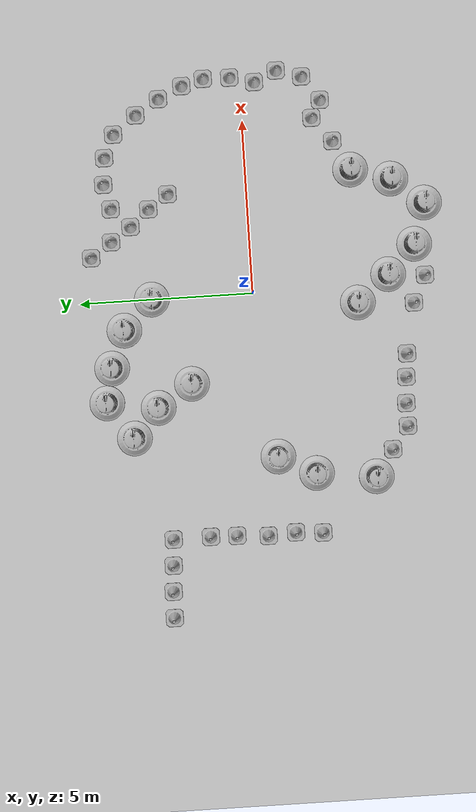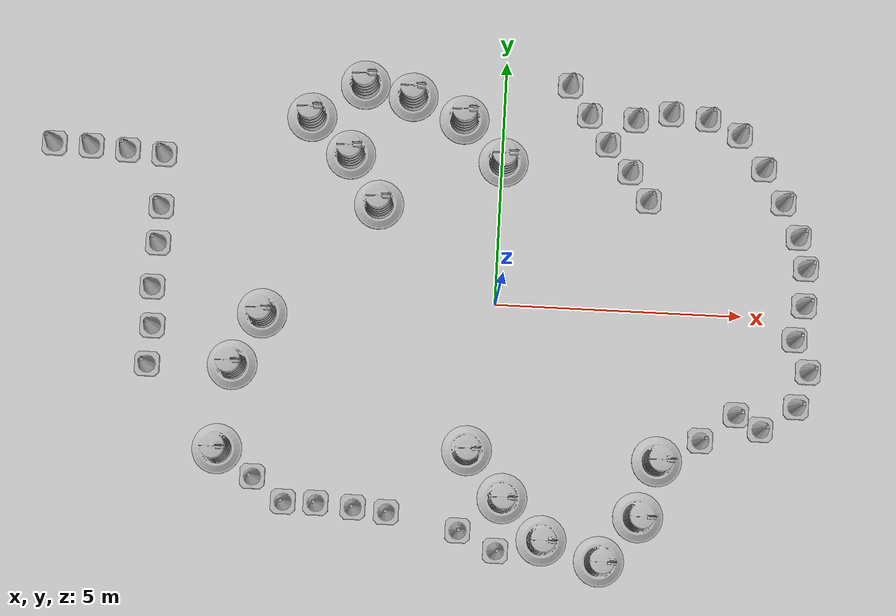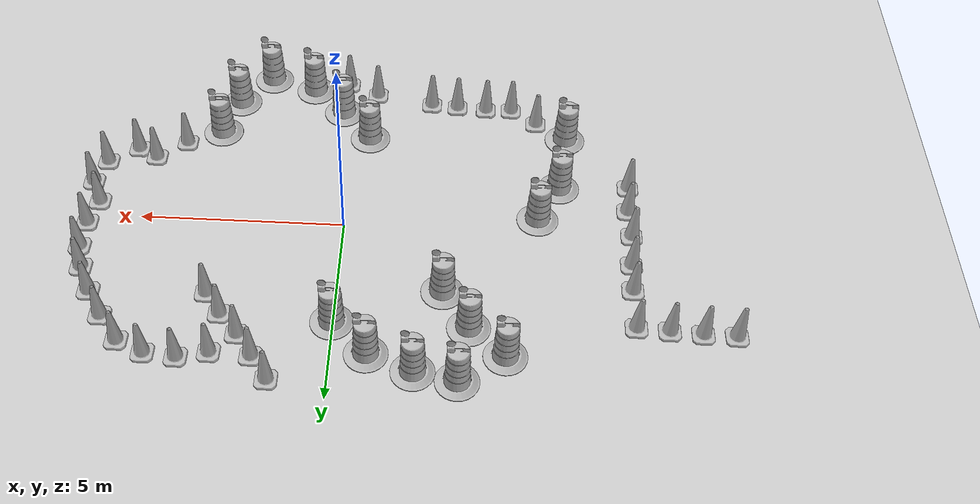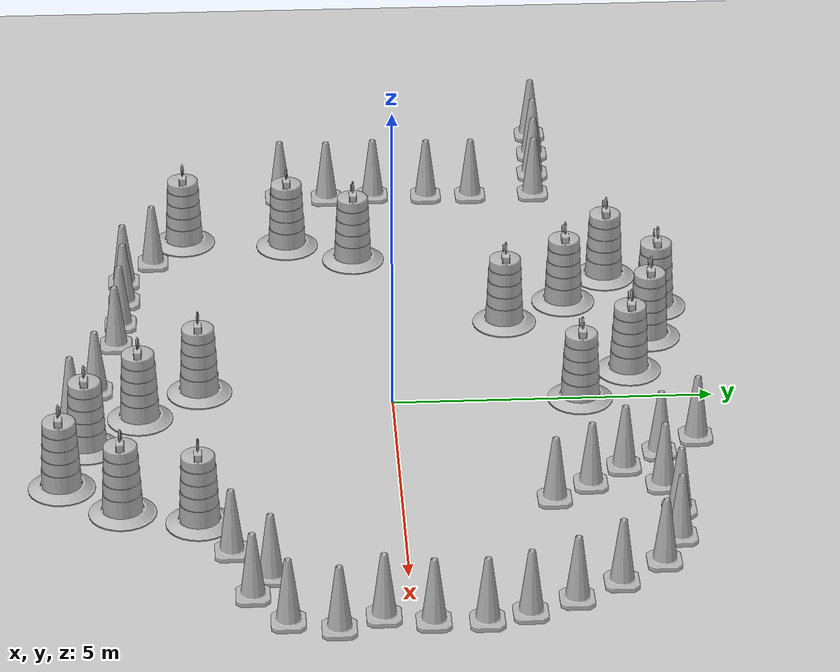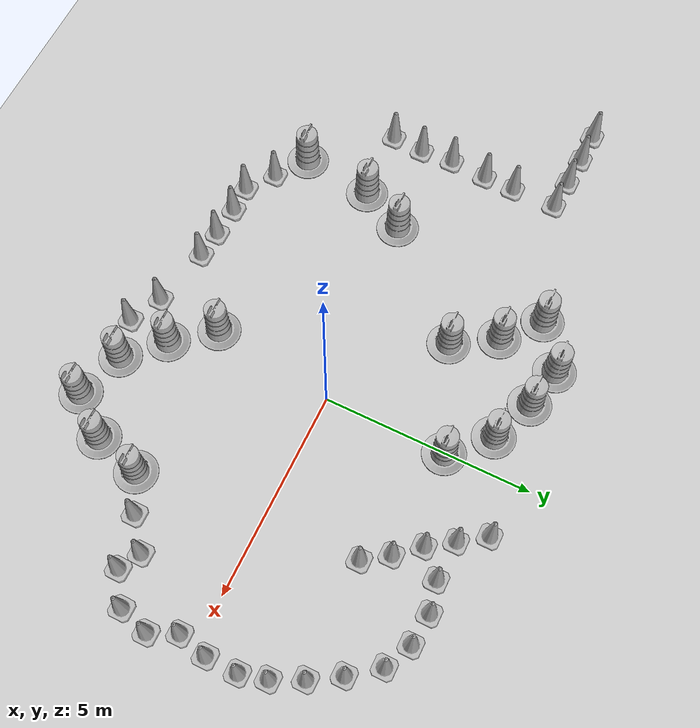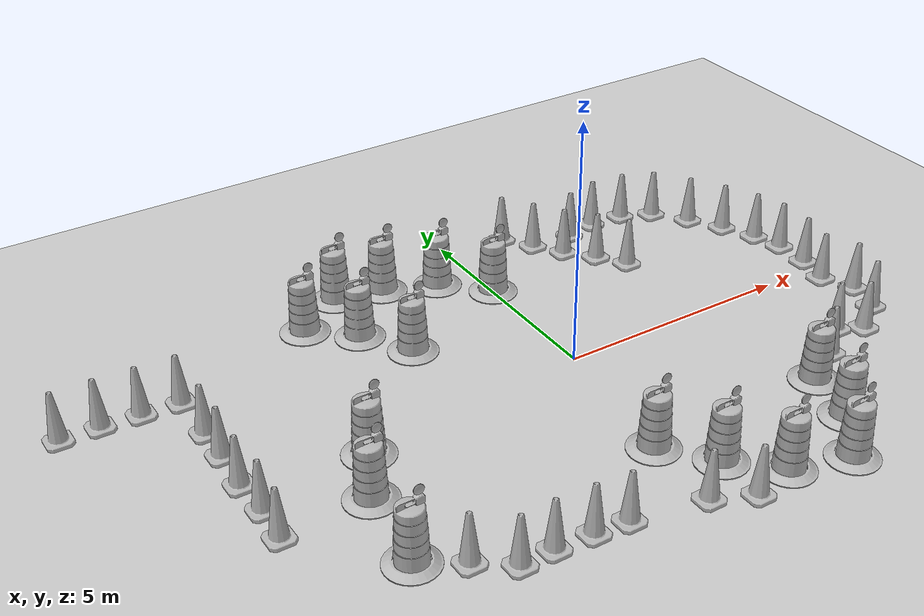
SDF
<sdf version="1.7">
 <world name="default">
  <light name="sun" type="directional">
   <pose>0 0 10 0 -0 0</pose>
   <diffuse>0.8 0.8 0.8 1</diffuse>
   <specular>0.2 0.2 0.2 1</specular>
   <attenuation>
    <range>1000</range>
    <constant>0.9</constant>
    <linear>0.01</linear>
    <quadratic>0.001</quadratic>
   </attenuation>
   <direction>-0.5 0.1 -0.9</direction>
   <spot><inner_angle>0</inner_angle><outer_angle>0</outer_angle><falloff>0</falloff></spot>
  </light>
  <model name="ground_plane">
   <static>1</static>
   <link name="link">
    <collision name="collision">
     <geometry><plane><normal>0 0 1</normal><size>100 100</size></plane></geometry>
     <surface><friction><ode><mu>100</mu><mu2>50</mu2></ode></friction></surface>
    </collision>
    <visual name="visual">
     <cast_shadows>0</cast_shadows>
     <geometry><plane><normal>0 0 1</normal><size>100 100</size></plane></geometry>
     <material>
      <script><uri>file://media/materials/scripts/gazebo.material</uri><name>Gazebo/Grey</name></script>
     </material>
    </visual>
   </link>
  </model>
  <gravity>0 0 -9.8</gravity>
  <magnetic_field>6e-06 2.3e-05 -4.2e-05</magnetic_field>
  <atmosphere type="adiabatic"/>
  <physics type="ode">
   <max_step_size>0.001</max_step_size>
   <real_time_factor>1</real_time_factor>
   <real_time_update_rate>1000</real_time_update_rate>
  </physics>
  <scene><ambient>0.4 0.4 0.4 1</ambient><background>0.7 0.7 0.7 1</background><shadows>1</shadows></scene>
  <audio><device>default</device></audio>
  <spherical_coordinates>
   <surface_model>EARTH_WGS84</surface_model>
   <latitude_deg>0</latitude_deg>
   <longitude_deg>0</longitude_deg>
   <elevation>0</elevation>
   <heading_deg>0</heading_deg>
  </spherical_coordinates>
  <model name="Construction Barrel">
   <link name="link">
    <inertial>
     <pose>0 0 0.4 0 -0 0</pose>
     <mass>500</mass>
     <inertia><ixx>51.2096</ixx><iyy>51.2096</iyy><izz>25</izz><ixy>0</ixy><ixz>0</ixz><iyz>0</iyz></inertia>
    </inertial>
    <collision name="collision">
     <geometry><mesh><uri>model://construction_barrel/meshes/construction_barrel.dae</uri></mesh></geometry>
    </collision>
    <visual name="visual">
     <geometry><mesh><uri>model://construction_barrel/meshes/construction_barrel.dae</uri></mesh></geometry>
    </visual>
   </link>
   <pose>-5.48412 -3.22158 -1e-06 4e-06 -1e-06 -6.3e-05</pose>
  </model>
  <model name="Construction Barrel_clone">
   <link name="link">
    <inertial>
     <pose>0 0 0.4 0 -0 0</pose>
     <mass>500</mass>
     <inertia><ixx>51.2096</ixx><iyy>51.2096</iyy><izz>25</izz><ixy>0</ixy><ixz>0</ixz><iyz>0</iyz></inertia>
    </inertial>
    <collision name="collision">
     <geometry><mesh><uri>model://construction_barrel/meshes/construction_barrel.dae</uri></mesh></geometry>
    </collision>
    <visual name="visual">
     <geometry><mesh><uri>model://construction_barrel/meshes/construction_barrel.dae</uri></mesh></geometry>
    </visual>
   </link>
   <pose>-5.27953 -1.50655 -2e-06 6e-06 -4e-06 -6.7e-05</pose>
  </model>
  <model name="Construction Barrel_clone_0">
   <link name="link">
    <inertial>
     <pose>0 0 0.4 0 -0 0</pose>
     <mass>500</mass>
     <inertia><ixx>51.2096</ixx><iyy>51.2096</iyy><izz>25</izz><ixy>0</ixy><ixz>0</ixz><iyz>0</iyz></inertia>
    </inertial>
    <collision name="collision">
     <geometry><mesh><uri>model://construction_barrel/meshes/construction_barrel.dae</uri></mesh></geometry>
    </collision>
    <visual name="visual">
     <geometry><mesh><uri>model://construction_barrel/meshes/construction_barrel.dae</uri></mesh></geometry>
    </visual>
   </link>
   <pose>-4.73432 -0.427312 -1e-06 4e-06 -1e-06 -6.3e-05</pose>
  </model>
  <model name="Construction Barrel_clone_1">
   <link name="link">
    <inertial>
     <pose>0 0 0.4 0 -0 0</pose>
     <mass>500</mass>
     <inertia><ixx>51.2096</ixx><iyy>51.2096</iyy><izz>25</izz><ixy>0</ixy><ixz>0</ixz><iyz>0</iyz></inertia>
    </inertial>
    <collision name="collision">
     <geometry><mesh><uri>model://construction_barrel/meshes/construction_barrel.dae</uri></mesh></geometry>
    </collision>
    <visual name="visual">
     <geometry><mesh><uri>model://construction_barrel/meshes/construction_barrel.dae</uri></mesh></geometry>
    </visual>
   </link>
   <pose>-2.47926 1.92801 -1e-06 4e-06 -1e-06 -6.2e-05</pose>
  </model>
  <model name="Construction Barrel_clone_2">
   <link name="link">
    <inertial>
     <pose>0 0 0.4 0 -0 0</pose>
     <mass>500</mass>
     <inertia><ixx>51.2096</ixx><iyy>51.2096</iyy><izz>25</izz><ixy>0</ixy><ixz>0</ixz><iyz>0</iyz></inertia>
    </inertial>
    <collision name="collision">
     <geometry><mesh><uri>model://construction_barrel/meshes/construction_barrel.dae</uri></mesh></geometry>
    </collision>
    <visual name="visual">
     <geometry><mesh><uri>model://construction_barrel/meshes/construction_barrel.dae</uri></mesh></geometry>
    </visual>
   </link>
   <pose>-3.11243 2.93275 -1e-06 4e-06 -1e-06 -6.1e-05</pose>
  </model>
  <model name="Construction Barrel_clone_3">
   <link name="link">
    <inertial>
     <pose>0 0 0.4 0 -0 0</pose>
     <mass>500</mass>
     <inertia><ixx>51.2096</ixx><iyy>51.2096</iyy><izz>25</izz><ixy>0</ixy><ixz>0</ixz><iyz>0</iyz></inertia>
    </inertial>
    <collision name="collision">
     <geometry><mesh><uri>model://construction_barrel/meshes/construction_barrel.dae</uri></mesh></geometry>
    </collision>
    <visual name="visual">
     <geometry><mesh><uri>model://construction_barrel/meshes/construction_barrel.dae</uri></mesh></geometry>
    </visual>
   </link>
   <pose>-3.95111 3.67349 0 1e-06 1e-06 -6.1e-05</pose>
  </model>
  <model name="Construction Barrel_clone_4">
   <link name="link">
    <inertial>
     <pose>0 0 0.4 0 -0 0</pose>
     <mass>500</mass>
     <inertia><ixx>51.2096</ixx><iyy>51.2096</iyy><izz>25</izz><ixy>0</ixy><ixz>0</ixz><iyz>0</iyz></inertia>
    </inertial>
    <collision name="collision">
     <geometry><mesh><uri>model://construction_barrel/meshes/construction_barrel.dae</uri></mesh></geometry>
    </collision>
    <visual name="visual">
     <geometry><mesh><uri>model://construction_barrel/meshes/construction_barrel.dae</uri></mesh></geometry>
    </visual>
   </link>
   <pose>-2.88832 4.40209 -3e-06 -7e-06 -1.1e-05 0.011005</pose>
  </model>
  <model name="Construction Barrel_clone_5">
   <link name="link">
    <inertial>
     <pose>0 0 0.4 0 -0 0</pose>
     <mass>500</mass>
     <inertia><ixx>51.2096</ixx><iyy>51.2096</iyy><izz>25</izz><ixy>0</ixy><ixz>0</ixz><iyz>0</iyz></inertia>
    </inertial>
    <collision name="collision">
     <geometry><mesh><uri>model://construction_barrel/meshes/construction_barrel.dae</uri></mesh></geometry>
    </collision>
    <visual name="visual">
     <geometry><mesh><uri>model://construction_barrel/meshes/construction_barrel.dae</uri></mesh></geometry>
    </visual>
   </link>
   <pose>-1.89361 4.19939 -2e-06 1e-06 8e-06 -0.028723</pose>
  </model>
  <model name="Construction Barrel_clone_6">
   <link name="link">
    <inertial>
     <pose>0 0 0.4 0 -0 0</pose>
     <mass>500</mass>
     <inertia><ixx>51.2096</ixx><iyy>51.2096</iyy><izz>25</izz><ixy>0</ixy><ixz>0</ixz><iyz>0</iyz></inertia>
    </inertial>
    <collision name="collision">
     <geometry><mesh><uri>model://construction_barrel/meshes/construction_barrel.dae</uri></mesh></geometry>
    </collision>
    <visual name="visual">
     <geometry><mesh><uri>model://construction_barrel/meshes/construction_barrel.dae</uri></mesh></geometry>
    </visual>
   </link>
   <pose>-0.822973 3.77781 0 1e-06 1e-06 -5.8e-05</pose>
  </model>
  <model name="Construction Barrel_clone_7">
   <link name="link">
    <inertial>
     <pose>0 0 0.4 0 -0 0</pose>
     <mass>500</mass>
     <inertia><ixx>51.2096</ixx><iyy>51.2096</iyy><izz>25</izz><ixy>0</ixy><ixz>0</ixz><iyz>0</iyz></inertia>
    </inertial>
    <collision name="collision">
     <geometry><mesh><uri>model://construction_barrel/meshes/construction_barrel.dae</uri></mesh></geometry>
    </collision>
    <visual name="visual">
     <geometry><mesh><uri>model://construction_barrel/meshes/construction_barrel.dae</uri></mesh></geometry>
    </visual>
   </link>
   <pose>0.022057 2.93383 -1e-06 4e-06 -1e-06 -5.5e-05</pose>
  </model>
  <model name="Construction Barrel_clone_8">
   <link name="link">
    <inertial>
     <pose>0 0 0.4 0 -0 0</pose>
     <mass>500</mass>
     <inertia><ixx>51.2096</ixx><iyy>51.2096</iyy><izz>25</izz><ixy>0</ixy><ixz>0</ixz><iyz>0</iyz></inertia>
    </inertial>
    <collision name="collision">
     <geometry><mesh><uri>model://construction_barrel/meshes/construction_barrel.dae</uri></mesh></geometry>
    </collision>
    <visual name="visual">
     <geometry><mesh><uri>model://construction_barrel/meshes/construction_barrel.dae</uri></mesh></geometry>
    </visual>
   </link>
   <pose>3.40298 -3.02205 -1e-06 4e-06 -1e-06 -5.4e-05</pose>
  </model>
  <model name="Construction Barrel_clone_9">
   <link name="link">
    <inertial>
     <pose>0 0 0.4 0 -0 0</pose>
     <mass>500</mass>
     <inertia><ixx>51.2096</ixx><iyy>51.2096</iyy><izz>25</izz><ixy>0</ixy><ixz>0</ixz><iyz>0</iyz></inertia>
    </inertial>
    <collision name="collision">
     <geometry><mesh><uri>model://construction_barrel/meshes/construction_barrel.dae</uri></mesh></geometry>
    </collision>
    <visual name="visual">
     <geometry><mesh><uri>model://construction_barrel/meshes/construction_barrel.dae</uri></mesh></geometry>
    </visual>
   </link>
   <pose>3.06785 -4.16456 -1e-06 4e-06 -1e-06 -5.3e-05</pose>
  </model>
  <model name="Construction Barrel_clone_10">
   <link name="link">
    <inertial>
     <pose>0 0 0.4 0 -0 0</pose>
     <mass>500</mass>
     <inertia><ixx>51.2096</ixx><iyy>51.2096</iyy><izz>25</izz><ixy>0</ixy><ixz>0</ixz><iyz>0</iyz></inertia>
    </inertial>
    <collision name="collision">
     <geometry><mesh><uri>model://construction_barrel/meshes/construction_barrel.dae</uri></mesh></geometry>
    </collision>
    <visual name="visual">
     <geometry><mesh><uri>model://construction_barrel/meshes/construction_barrel.dae</uri></mesh></geometry>
    </visual>
   </link>
   <pose>-0.441019 -3.00007 0 1e-06 1e-06 -5.3e-05</pose>
  </model>
  <model name="Construction Barrel_clone_11">
   <link name="link">
    <inertial>
     <pose>0 0 0.4 0 -0 0</pose>
     <mass>500</mass>
     <inertia><ixx>51.2096</ixx><iyy>51.2096</iyy><izz>25</izz><ixy>0</ixy><ixz>0</ixz><iyz>0</iyz></inertia>
    </inertial>
    <collision name="collision">
     <geometry><mesh><uri>model://construction_barrel/meshes/construction_barrel.dae</uri></mesh></geometry>
    </collision>
    <visual name="visual">
     <geometry><mesh><uri>model://construction_barrel/meshes/construction_barrel.dae</uri></mesh></geometry>
    </visual>
   </link>
   <pose>0.319661 -3.9246 -1e-06 4e-06 -1e-06 -5.1e-05</pose>
  </model>
  <model name="Construction Barrel_clone_12">
   <link name="link">
    <inertial>
     <pose>0 0 0.4 0 -0 0</pose>
     <mass>500</mass>
     <inertia><ixx>51.2096</ixx><iyy>51.2096</iyy><izz>25</izz><ixy>0</ixy><ixz>0</ixz><iyz>0</iyz></inertia>
    </inertial>
    <collision name="collision">
     <geometry><mesh><uri>model://construction_barrel/meshes/construction_barrel.dae</uri></mesh></geometry>
    </collision>
    <visual name="visual">
     <geometry><mesh><uri>model://construction_barrel/meshes/construction_barrel.dae</uri></mesh></geometry>
    </visual>
   </link>
   <pose>1.14602 -4.72974 0 1e-06 1e-06 -5.1e-05</pose>
  </model>
  <model name="Construction Barrel_clone_13">
   <link name="link">
    <inertial>
     <pose>0 0 0.4 0 -0 0</pose>
     <mass>500</mass>
     <inertia><ixx>51.2096</ixx><iyy>51.2096</iyy><izz>25</izz><ixy>0</ixy><ixz>0</ixz><iyz>0</iyz></inertia>
    </inertial>
    <collision name="collision">
     <geometry><mesh><uri>model://construction_barrel/meshes/construction_barrel.dae</uri></mesh></geometry>
    </collision>
    <visual name="visual">
     <geometry><mesh><uri>model://construction_barrel/meshes/construction_barrel.dae</uri></mesh></geometry>
    </visual>
   </link>
   <pose>2.31932 -5.08798 -1e-06 4e-06 -1e-06 -4.8e-05</pose>
  </model>
  <model name="Construction Cone">
   <link name="link">
    <collision name="collision">
     <geometry>
      <mesh><scale>10 10 10</scale><uri>model://construction_cone/meshes/construction_cone.dae</uri></mesh>
     </geometry>
    </collision>
    <visual name="visual">
     <geometry>
      <mesh><scale>10 10 10</scale><uri>model://construction_cone/meshes/construction_cone.dae</uri></mesh>
     </geometry>
    </visual>
    <inertial>
     <inertia><ixx>1</ixx><ixy>0</ixy><ixz>0</ixz><iyy>1</iyy><iyz>0</iyz><izz>1</izz></inertia>
     <mass>1</mass>
    </inertial>
   </link>
   <pose>1.32289 4.59929 -0 0 -1e-06 0</pose>
  </model>
  <model name="Construction Cone_clone">
   <link name="link">
    <collision name="collision">
     <geometry>
      <mesh><scale>10 10 10</scale><uri>model://construction_cone/meshes/construction_cone.dae</uri></mesh>
     </geometry>
    </collision>
    <visual name="visual">
     <geometry>
      <mesh><scale>10 10 10</scale><uri>model://construction_cone/meshes/construction_cone.dae</uri></mesh>
     </geometry>
    </visual>
    <inertial>
     <inertia><ixx>1</ixx><ixy>0</ixy><ixz>0</ixz><iyy>1</iyy><iyz>0</iyz><izz>1</izz></inertia>
     <mass>1</mass>
    </inertial>
   </link>
   <pose>1.74638 3.99434 -0 0 -0 0</pose>
  </model>
  <model name="Construction Cone_clone_0">
   <link name="link">
    <collision name="collision">
     <geometry>
      <mesh><scale>10 10 10</scale><uri>model://construction_cone/meshes/construction_cone.dae</uri></mesh>
     </geometry>
    </collision>
    <visual name="visual">
     <geometry>
      <mesh><scale>10 10 10</scale><uri>model://construction_cone/meshes/construction_cone.dae</uri></mesh>
     </geometry>
    </visual>
    <inertial>
     <inertia><ixx>1</ixx><ixy>0</ixy><ixz>0</ixz><iyy>1</iyy><iyz>0</iyz><izz>1</izz></inertia>
     <mass>1</mass>
    </inertial>
   </link>
   <pose>2.15028 3.4113 -0 0 -1e-06 0</pose>
  </model>
  <model name="Construction Cone_clone_1">
   <link name="link">
    <collision name="collision">
     <geometry>
      <mesh><scale>10 10 10</scale><uri>model://construction_cone/meshes/construction_cone.dae</uri></mesh>
     </geometry>
    </collision>
    <visual name="visual">
     <geometry>
      <mesh><scale>10 10 10</scale><uri>model://construction_cone/meshes/construction_cone.dae</uri></mesh>
     </geometry>
    </visual>
    <inertial>
     <inertia><ixx>1</ixx><ixy>0</ixy><ixz>0</ixz><iyy>1</iyy><iyz>0</iyz><izz>1</izz></inertia>
     <mass>1</mass>
    </inertial>
   </link>
   <pose>2.62665 2.86362 -0 0 -1e-06 0</pose>
  </model>
  <model name="Construction Cone_clone_2">
   <link name="link">
    <collision name="collision">
     <geometry>
      <mesh><scale>10 10 10</scale><uri>model://construction_cone/meshes/construction_cone.dae</uri></mesh>
     </geometry>
    </collision>
    <visual name="visual">
     <geometry>
      <mesh><scale>10 10 10</scale><uri>model://construction_cone/meshes/construction_cone.dae</uri></mesh>
     </geometry>
    </visual>
    <inertial>
     <inertia><ixx>1</ixx><ixy>0</ixy><ixz>0</ixz><iyy>1</iyy><iyz>0</iyz><izz>1</izz></inertia>
     <mass>1</mass>
    </inertial>
   </link>
   <pose>3.02666 2.2856 -0 0 -0 0</pose>
  </model>
  <model name="Construction Cone_clone_3">
   <link name="link">
    <collision name="collision">
     <geometry>
      <mesh><scale>10 10 10</scale><uri>model://construction_cone/meshes/construction_cone.dae</uri></mesh>
     </geometry>
    </collision>
    <visual name="visual">
     <geometry>
      <mesh><scale>10 10 10</scale><uri>model://construction_cone/meshes/construction_cone.dae</uri></mesh>
     </geometry>
    </visual>
    <inertial>
     <inertia><ixx>1</ixx><ixy>0</ixy><ixz>0</ixz><iyy>1</iyy><iyz>0</iyz><izz>1</izz></inertia>
     <mass>1</mass>
    </inertial>
   </link>
   <pose>2.69917 3.94926 -0 0 -0 0</pose>
  </model>
  <model name="Construction Cone_clone_4">
   <link name="link">
    <collision name="collision">
     <geometry>
      <mesh><scale>10 10 10</scale><uri>model://construction_cone/meshes/construction_cone.dae</uri></mesh>
     </geometry>
    </collision>
    <visual name="visual">
     <geometry>
      <mesh><scale>10 10 10</scale><uri>model://construction_cone/meshes/construction_cone.dae</uri></mesh>
     </geometry>
    </visual>
    <inertial>
     <inertia><ixx>1</ixx><ixy>0</ixy><ixz>0</ixz><iyy>1</iyy><iyz>0</iyz><izz>1</izz></inertia>
     <mass>1</mass>
    </inertial>
   </link>
   <pose>3.41835 4.11511 -0 0 -1e-06 0</pose>
  </model>
  <model name="Construction Cone_clone_5">
   <link name="link">
    <collision name="collision">
     <geometry>
      <mesh><scale>10 10 10</scale><uri>model://construction_cone/meshes/construction_cone.dae</uri></mesh>
     </geometry>
    </collision>
    <visual name="visual">
     <geometry>
      <mesh><scale>10 10 10</scale><uri>model://construction_cone/meshes/construction_cone.dae</uri></mesh>
     </geometry>
    </visual>
    <inertial>
     <inertia><ixx>1</ixx><ixy>0</ixy><ixz>0</ixz><iyy>1</iyy><iyz>0</iyz><izz>1</izz></inertia>
     <mass>1</mass>
    </inertial>
   </link>
   <pose>4.18175 4.04255 -0 0 -1e-06 0</pose>
  </model>
  <model name="Construction Cone_clone_6">
   <link name="link">
    <collision name="collision">
     <geometry>
      <mesh><scale>10 10 10</scale><uri>model://construction_cone/meshes/construction_cone.dae</uri></mesh>
     </geometry>
    </collision>
    <visual name="visual">
     <geometry>
      <mesh><scale>10 10 10</scale><uri>model://construction_cone/meshes/construction_cone.dae</uri></mesh>
     </geometry>
    </visual>
    <inertial>
     <inertia><ixx>1</ixx><ixy>0</ixy><ixz>0</ixz><iyy>1</iyy><iyz>0</iyz><izz>1</izz></inertia>
     <mass>1</mass>
    </inertial>
   </link>
   <pose>4.84295 3.73927 -0 0 -1e-06 0</pose>
  </model>
  <model name="Construction Cone_clone_7">
   <link name="link">
    <collision name="collision">
     <geometry>
      <mesh><scale>10 10 10</scale><uri>model://construction_cone/meshes/construction_cone.dae</uri></mesh>
     </geometry>
    </collision>
    <visual name="visual">
     <geometry>
      <mesh><scale>10 10 10</scale><uri>model://construction_cone/meshes/construction_cone.dae</uri></mesh>
     </geometry>
    </visual>
    <inertial>
     <inertia><ixx>1</ixx><ixy>0</ixy><ixz>0</ixz><iyy>1</iyy><iyz>0</iyz><izz>1</izz></inertia>
     <mass>1</mass>
    </inertial>
   </link>
   <pose>5.35961 3.06509 -0 0 -0 0</pose>
  </model>
  <model name="Construction Cone_clone_8">
   <link name="link">
    <collision name="collision">
     <geometry>
      <mesh><scale>10 10 10</scale><uri>model://construction_cone/meshes/construction_cone.dae</uri></mesh>
     </geometry>
    </collision>
    <visual name="visual">
     <geometry>
      <mesh><scale>10 10 10</scale><uri>model://construction_cone/meshes/construction_cone.dae</uri></mesh>
     </geometry>
    </visual>
    <inertial>
     <inertia><ixx>1</ixx><ixy>0</ixy><ixz>0</ixz><iyy>1</iyy><iyz>0</iyz><izz>1</izz></inertia>
     <mass>1</mass>
    </inertial>
   </link>
   <pose>5.78327 2.38067 -0 0 -1e-06 0</pose>
  </model>
  <model name="Construction Cone_clone_9">
   <link name="link">
    <collision name="collision">
     <geometry>
      <mesh><scale>10 10 10</scale><uri>model://construction_cone/meshes/construction_cone.dae</uri></mesh>
     </geometry>
    </collision>
    <visual name="visual">
     <geometry>
      <mesh><scale>10 10 10</scale><uri>model://construction_cone/meshes/construction_cone.dae</uri></mesh>
     </geometry>
    </visual>
    <inertial>
     <inertia><ixx>1</ixx><ixy>0</ixy><ixz>0</ixz><iyy>1</iyy><iyz>0</iyz><izz>1</izz></inertia>
     <mass>1</mass>
    </inertial>
   </link>
   <pose>6.11428 1.68565 0 -0 -0 -0</pose>
  </model>
  <model name="Construction Cone_clone_10">
   <link name="link">
    <collision name="collision">
     <geometry>
      <mesh><scale>10 10 10</scale><uri>model://construction_cone/meshes/construction_cone.dae</uri></mesh>
     </geometry>
    </collision>
    <visual name="visual">
     <geometry>
      <mesh><scale>10 10 10</scale><uri>model://construction_cone/meshes/construction_cone.dae</uri></mesh>
     </geometry>
    </visual>
    <inertial>
     <inertia><ixx>1</ixx><ixy>0</ixy><ixz>0</ixz><iyy>1</iyy><iyz>0</iyz><izz>1</izz></inertia>
     <mass>1</mass>
    </inertial>
   </link>
   <pose>6.28545 1.05387 -0 0 -1e-06 0</pose>
  </model>
  <model name="Construction Cone_clone_11">
   <link name="link">
    <collision name="collision">
     <geometry>
      <mesh><scale>10 10 10</scale><uri>model://construction_cone/meshes/construction_cone.dae</uri></mesh>
     </geometry>
    </collision>
    <visual name="visual">
     <geometry>
      <mesh><scale>10 10 10</scale><uri>model://construction_cone/meshes/construction_cone.dae</uri></mesh>
     </geometry>
    </visual>
    <inertial>
     <inertia><ixx>1</ixx><ixy>0</ixy><ixz>0</ixz><iyy>1</iyy><iyz>0</iyz><izz>1</izz></inertia>
     <mass>1</mass>
    </inertial>
   </link>
   <pose>6.27147 0.289748 -0 0 -1e-06 0</pose>
  </model>
  <model name="Construction Cone_clone_12">
   <link name="link">
    <collision name="collision">
     <geometry>
      <mesh><scale>10 10 10</scale><uri>model://construction_cone/meshes/construction_cone.dae</uri></mesh>
     </geometry>
    </collision>
    <visual name="visual">
     <geometry>
      <mesh><scale>10 10 10</scale><uri>model://construction_cone/meshes/construction_cone.dae</uri></mesh>
     </geometry>
    </visual>
    <inertial>
     <inertia><ixx>1</ixx><ixy>0</ixy><ixz>0</ixz><iyy>1</iyy><iyz>0</iyz><izz>1</izz></inertia>
     <mass>1</mass>
    </inertial>
   </link>
   <pose>6.09899 -0.412612 -0 0 -1e-06 0</pose>
  </model>
  <model name="Construction Cone_clone_13">
   <link name="link">
    <collision name="collision">
     <geometry>
      <mesh><scale>10 10 10</scale><uri>model://construction_cone/meshes/construction_cone.dae</uri></mesh>
     </geometry>
    </collision>
    <visual name="visual">
     <geometry>
      <mesh><scale>10 10 10</scale><uri>model://construction_cone/meshes/construction_cone.dae</uri></mesh>
     </geometry>
    </visual>
    <inertial>
     <inertia><ixx>1</ixx><ixy>0</ixy><ixz>0</ixz><iyy>1</iyy><iyz>0</iyz><izz>1</izz></inertia>
     <mass>1</mass>
    </inertial>
   </link>
   <pose>6.39283 -1.05939 -0 0 -1e-06 0</pose>
  </model>
  <model name="Construction Cone_clone_14">
   <link name="link">
    <collision name="collision">
     <geometry>
      <mesh><scale>10 10 10</scale><uri>model://construction_cone/meshes/construction_cone.dae</uri></mesh>
     </geometry>
    </collision>
    <visual name="visual">
     <geometry>
      <mesh><scale>10 10 10</scale><uri>model://construction_cone/meshes/construction_cone.dae</uri></mesh>
     </geometry>
    </visual>
    <inertial>
     <inertia><ixx>1</ixx><ixy>0</ixy><ixz>0</ixz><iyy>1</iyy><iyz>0</iyz><izz>1</izz></inertia>
     <mass>1</mass>
    </inertial>
   </link>
   <pose>6.17319 -1.77829 -0 0 -1e-06 0</pose>
  </model>
  <model name="Construction Cone_clone_15">
   <link name="link">
    <collision name="collision">
     <geometry>
      <mesh><scale>10 10 10</scale><uri>model://construction_cone/meshes/construction_cone.dae</uri></mesh>
     </geometry>
    </collision>
    <visual name="visual">
     <geometry>
      <mesh><scale>10 10 10</scale><uri>model://construction_cone/meshes/construction_cone.dae</uri></mesh>
     </geometry>
    </visual>
    <inertial>
     <inertia><ixx>1</ixx><ixy>0</ixy><ixz>0</ixz><iyy>1</iyy><iyz>0</iyz><izz>1</izz></inertia>
     <mass>1</mass>
    </inertial>
   </link>
   <pose>5.46575 -2.27138 -0 0 -1e-06 -0.005535</pose>
  </model>
  <model name="Construction Cone_clone_16">
   <link name="link">
    <collision name="collision">
     <geometry>
      <mesh><scale>10 10 10</scale><uri>model://construction_cone/meshes/construction_cone.dae</uri></mesh>
     </geometry>
    </collision>
    <visual name="visual">
     <geometry>
      <mesh><scale>10 10 10</scale><uri>model://construction_cone/meshes/construction_cone.dae</uri></mesh>
     </geometry>
    </visual>
    <inertial>
     <inertia><ixx>1</ixx><ixy>0</ixy><ixz>0</ixz><iyy>1</iyy><iyz>0</iyz><izz>1</izz></inertia>
     <mass>1</mass>
    </inertial>
   </link>
   <pose>4.96399 -1.999 -1e-05 0 0 -0.003749</pose>
  </model>
  <model name="Construction Cone_clone_17">
   <link name="link">
    <collision name="collision">
     <geometry>
      <mesh><scale>10 10 10</scale><uri>model://construction_cone/meshes/construction_cone.dae</uri></mesh>
     </geometry>
    </collision>
    <visual name="visual">
     <geometry>
      <mesh><scale>10 10 10</scale><uri>model://construction_cone/meshes/construction_cone.dae</uri></mesh>
     </geometry>
    </visual>
    <inertial>
     <inertia><ixx>1</ixx><ixy>0</ixy><ixz>0</ixz><iyy>1</iyy><iyz>0</iyz><izz>1</izz></inertia>
     <mass>1</mass>
    </inertial>
   </link>
   <pose>4.26296 -2.55758 -0 0 -1e-06 0</pose>
  </model>
  <model name="Construction Cone_clone_18">
   <link name="link">
    <collision name="collision">
     <geometry>
      <mesh><scale>10 10 10</scale><uri>model://construction_cone/meshes/construction_cone.dae</uri></mesh>
     </geometry>
    </collision>
    <visual name="visual">
     <geometry>
      <mesh><scale>10 10 10</scale><uri>model://construction_cone/meshes/construction_cone.dae</uri></mesh>
     </geometry>
    </visual>
    <inertial>
     <inertia><ixx>1</ixx><ixy>0</ixy><ixz>0</ixz><iyy>1</iyy><iyz>0</iyz><izz>1</izz></inertia>
     <mass>1</mass>
    </inertial>
   </link>
   <pose>-4.73278 -3.74154 -0 0 -0 0</pose>
  </model>
  <model name="Construction Cone_clone_19">
   <link name="link">
    <collision name="collision">
     <geometry>
      <mesh><scale>10 10 10</scale><uri>model://construction_cone/meshes/construction_cone.dae</uri></mesh>
     </geometry>
    </collision>
    <visual name="visual">
     <geometry>
      <mesh><scale>10 10 10</scale><uri>model://construction_cone/meshes/construction_cone.dae</uri></mesh>
     </geometry>
    </visual>
    <inertial>
     <inertia><ixx>1</ixx><ixy>0</ixy><ixz>0</ixz><iyy>1</iyy><iyz>0</iyz><izz>1</izz></inertia>
     <mass>1</mass>
    </inertial>
   </link>
   <pose>-4.08748 -4.21481 -0 0 -1e-06 0</pose>
  </model>
  <model name="Construction Cone_clone_20">
   <link name="link">
    <collision name="collision">
     <geometry>
      <mesh><scale>10 10 10</scale><uri>model://construction_cone/meshes/construction_cone.dae</uri></mesh>
     </geometry>
    </collision>
    <visual name="visual">
     <geometry>
      <mesh><scale>10 10 10</scale><uri>model://construction_cone/meshes/construction_cone.dae</uri></mesh>
     </geometry>
    </visual>
    <inertial>
     <inertia><ixx>1</ixx><ixy>0</ixy><ixz>0</ixz><iyy>1</iyy><iyz>0</iyz><izz>1</izz></inertia>
     <mass>1</mass>
    </inertial>
   </link>
   <pose>-3.42609 -4.20632 0 -0 -0 -0</pose>
  </model>
  <model name="Construction Cone_clone_21">
   <link name="link">
    <collision name="collision">
     <geometry>
      <mesh><scale>10 10 10</scale><uri>model://construction_cone/meshes/construction_cone.dae</uri></mesh>
     </geometry>
    </collision>
    <visual name="visual">
     <geometry>
      <mesh><scale>10 10 10</scale><uri>model://construction_cone/meshes/construction_cone.dae</uri></mesh>
     </geometry>
    </visual>
    <inertial>
     <inertia><ixx>1</ixx><ixy>0</ixy><ixz>0</ixz><iyy>1</iyy><iyz>0</iyz><izz>1</izz></inertia>
     <mass>1</mass>
    </inertial>
   </link>
   <pose>-2.67471 -4.25477 -1e-05 0 1e-06 0</pose>
  </model>
  <model name="Construction Cone_clone_22">
   <link name="link">
    <collision name="collision">
     <geometry>
      <mesh><scale>10 10 10</scale><uri>model://construction_cone/meshes/construction_cone.dae</uri></mesh>
     </geometry>
    </collision>
    <visual name="visual">
     <geometry>
      <mesh><scale>10 10 10</scale><uri>model://construction_cone/meshes/construction_cone.dae</uri></mesh>
     </geometry>
    </visual>
    <inertial>
     <inertia><ixx>1</ixx><ixy>0</ixy><ixz>0</ixz><iyy>1</iyy><iyz>0</iyz><izz>1</izz></inertia>
     <mass>1</mass>
    </inertial>
   </link>
   <pose>-1.99698 -4.31975 -0 0 -0 0</pose>
  </model>
  <model name="Construction Cone_clone_23">
   <link name="link">
    <collision name="collision">
     <geometry>
      <mesh><scale>10 10 10</scale><uri>model://construction_cone/meshes/construction_cone.dae</uri></mesh>
     </geometry>
    </collision>
    <visual name="visual">
     <geometry>
      <mesh><scale>10 10 10</scale><uri>model://construction_cone/meshes/construction_cone.dae</uri></mesh>
     </geometry>
    </visual>
    <inertial>
     <inertia><ixx>1</ixx><ixy>0</ixy><ixz>0</ixz><iyy>1</iyy><iyz>0</iyz><izz>1</izz></inertia>
     <mass>1</mass>
    </inertial>
   </link>
   <pose>0.232451 -4.97962 -8e-06 3e-06 -1e-06 0</pose>
  </model>
  <model name="Construction Cone_clone_24">
   <link name="link">
    <collision name="collision">
     <geometry>
      <mesh><scale>10 10 10</scale><uri>model://construction_cone/meshes/construction_cone.dae</uri></mesh>
     </geometry>
    </collision>
    <visual name="visual">
     <geometry>
      <mesh><scale>10 10 10</scale><uri>model://construction_cone/meshes/construction_cone.dae</uri></mesh>
     </geometry>
    </visual>
    <inertial>
     <inertia><ixx>1</ixx><ixy>0</ixy><ixz>0</ixz><iyy>1</iyy><iyz>0</iyz><izz>1</izz></inertia>
     <mass>1</mass>
    </inertial>
   </link>
   <pose>-0.543365 -4.61261 -0 0 -1e-06 0</pose>
  </model>
  <model name="Construction Cone_clone_25">
   <link name="link">
    <collision name="collision">
     <geometry>
      <mesh><scale>10 10 10</scale><uri>model://construction_cone/meshes/construction_cone.dae</uri></mesh>
     </geometry>
    </collision>
    <visual name="visual">
     <geometry>
      <mesh><scale>10 10 10</scale><uri>model://construction_cone/meshes/construction_cone.dae</uri></mesh>
     </geometry>
    </visual>
    <inertial>
     <inertia><ixx>1</ixx><ixy>0</ixy><ixz>0</ixz><iyy>1</iyy><iyz>0</iyz><izz>1</izz></inertia>
     <mass>1</mass>
    </inertial>
   </link>
   <pose>-9.19585 2.85437 -0 0 -1e-06 0</pose>
  </model>
  <model name="Construction Cone_clone_26">
   <link name="link">
    <collision name="collision">
     <geometry>
      <mesh><scale>10 10 10</scale><uri>model://construction_cone/meshes/construction_cone.dae</uri></mesh>
     </geometry>
    </collision>
    <visual name="visual">
     <geometry>
      <mesh><scale>10 10 10</scale><uri>model://construction_cone/meshes/construction_cone.dae</uri></mesh>
     </geometry>
    </visual>
    <inertial>
     <inertia><ixx>1</ixx><ixy>0</ixy><ixz>0</ixz><iyy>1</iyy><iyz>0</iyz><izz>1</izz></inertia>
     <mass>1</mass>
    </inertial>
   </link>
   <pose>-8.43635 2.83841 -0 0 -0 0</pose>
  </model>
  <model name="Construction Cone_clone_27">
   <link name="link">
    <collision name="collision">
     <geometry>
      <mesh><scale>10 10 10</scale><uri>model://construction_cone/meshes/construction_cone.dae</uri></mesh>
     </geometry>
    </collision>
    <visual name="visual">
     <geometry>
      <mesh><scale>10 10 10</scale><uri>model://construction_cone/meshes/construction_cone.dae</uri></mesh>
     </geometry>
    </visual>
    <inertial>
     <inertia><ixx>1</ixx><ixy>0</ixy><ixz>0</ixz><iyy>1</iyy><iyz>0</iyz><izz>1</izz></inertia>
     <mass>1</mass>
    </inertial>
   </link>
   <pose>-7.68468 2.78968 -0 0 -0 0</pose>
  </model>
  <model name="Construction Cone_clone_28">
   <link name="link">
    <collision name="collision">
     <geometry>
      <mesh><scale>10 10 10</scale><uri>model://construction_cone/meshes/construction_cone.dae</uri></mesh>
     </geometry>
    </collision>
    <visual name="visual">
     <geometry>
      <mesh><scale>10 10 10</scale><uri>model://construction_cone/meshes/construction_cone.dae</uri></mesh>
     </geometry>
    </visual>
    <inertial>
     <inertia><ixx>1</ixx><ixy>0</ixy><ixz>0</ixz><iyy>1</iyy><iyz>0</iyz><izz>1</izz></inertia>
     <mass>1</mass>
    </inertial>
   </link>
   <pose>-6.93307 2.74096 -0 0 -1e-06 0</pose>
  </model>
  <model name="Construction Cone_clone_29">
   <link name="link">
    <collision name="collision">
     <geometry>
      <mesh><scale>10 10 10</scale><uri>model://construction_cone/meshes/construction_cone.dae</uri></mesh>
     </geometry>
    </collision>
    <visual name="visual">
     <geometry>
      <mesh><scale>10 10 10</scale><uri>model://construction_cone/meshes/construction_cone.dae</uri></mesh>
     </geometry>
    </visual>
    <inertial>
     <inertia><ixx>1</ixx><ixy>0</ixy><ixz>0</ixz><iyy>1</iyy><iyz>0</iyz><izz>1</izz></inertia>
     <mass>1</mass>
    </inertial>
   </link>
   <pose>-7.00443 -1.57894 -0 0 -1e-06 0</pose>
  </model>
  <model name="Construction Cone_clone_30">
   <link name="link">
    <collision name="collision">
     <geometry>
      <mesh><scale>10 10 10</scale><uri>model://construction_cone/meshes/construction_cone.dae</uri></mesh>
     </geometry>
    </collision>
    <visual name="visual">
     <geometry>
      <mesh><scale>10 10 10</scale><uri>model://construction_cone/meshes/construction_cone.dae</uri></mesh>
     </geometry>
    </visual>
    <inertial>
     <inertia><ixx>1</ixx><ixy>0</ixy><ixz>0</ixz><iyy>1</iyy><iyz>0</iyz><izz>1</izz></inertia>
     <mass>1</mass>
    </inertial>
   </link>
   <pose>-6.94766 -0.794972 0 -0 -0 -0</pose>
  </model>
  <model name="Construction Cone_clone_31">
   <link name="link">
    <collision name="collision">
     <geometry>
      <mesh><scale>10 10 10</scale><uri>model://construction_cone/meshes/construction_cone.dae</uri></mesh>
     </geometry>
    </collision>
    <visual name="visual">
     <geometry>
      <mesh><scale>10 10 10</scale><uri>model://construction_cone/meshes/construction_cone.dae</uri></mesh>
     </geometry>
    </visual>
    <inertial>
     <inertia><ixx>1</ixx><ixy>0</ixy><ixz>0</ixz><iyy>1</iyy><iyz>0</iyz><izz>1</izz></inertia>
     <mass>1</mass>
    </inertial>
   </link>
   <pose>-7 -0 0 -0 -0 -0</pose>
  </model>
  <model name="Construction Cone_clone_32">
   <link name="link">
    <collision name="collision">
     <geometry>
      <mesh><scale>10 10 10</scale><uri>model://construction_cone/meshes/construction_cone.dae</uri></mesh>
     </geometry>
    </collision>
    <visual name="visual">
     <geometry>
      <mesh><scale>10 10 10</scale><uri>model://construction_cone/meshes/construction_cone.dae</uri></mesh>
     </geometry>
    </visual>
    <inertial>
     <inertia><ixx>1</ixx><ixy>0</ixy><ixz>0</ixz><iyy>1</iyy><iyz>0</iyz><izz>1</izz></inertia>
     <mass>1</mass>
    </inertial>
   </link>
   <pose>-6.94005 0.903558 -0 0 -0 0</pose>
  </model>
  <model name="Construction Cone_clone_33">
   <link name="link">
    <collision name="collision">
     <geometry>
      <mesh><scale>10 10 10</scale><uri>model://construction_cone/meshes/construction_cone.dae</uri></mesh>
     </geometry>
    </collision>
    <visual name="visual">
     <geometry>
      <mesh><scale>10 10 10</scale><uri>model://construction_cone/meshes/construction_cone.dae</uri></mesh>
     </geometry>
    </visual>
    <inertial>
     <inertia><ixx>1</ixx><ixy>0</ixy><ixz>0</ixz><iyy>1</iyy><iyz>0</iyz><izz>1</izz></inertia>
     <mass>1</mass>
    </inertial>
   </link>
   <pose>-6.92409 1.66298 -0 0 -1e-06 0</pose>
  </model>
 </world>
</sdf>
